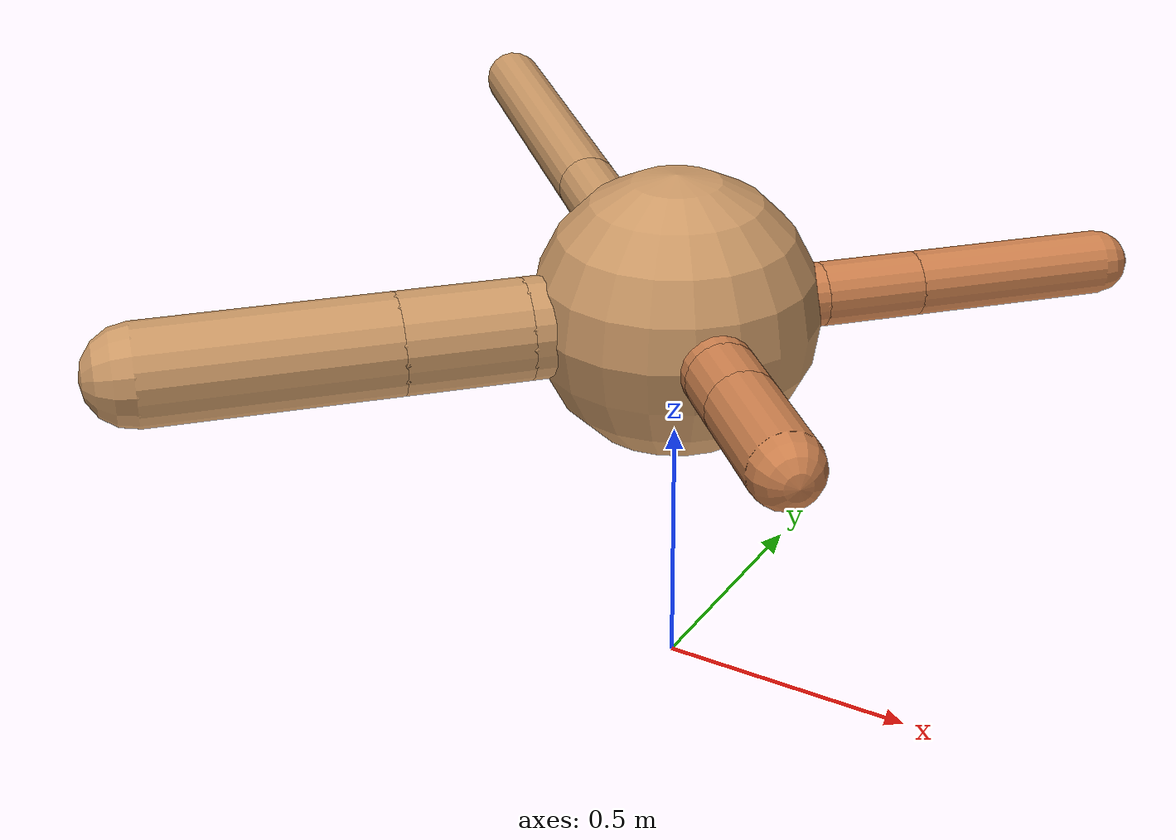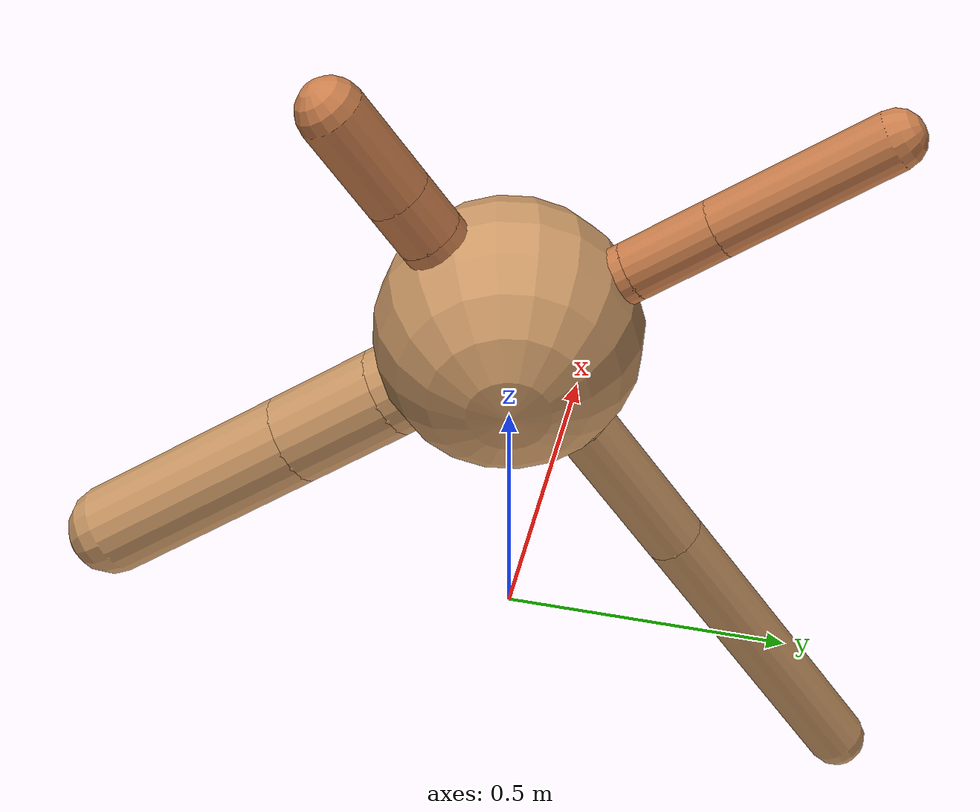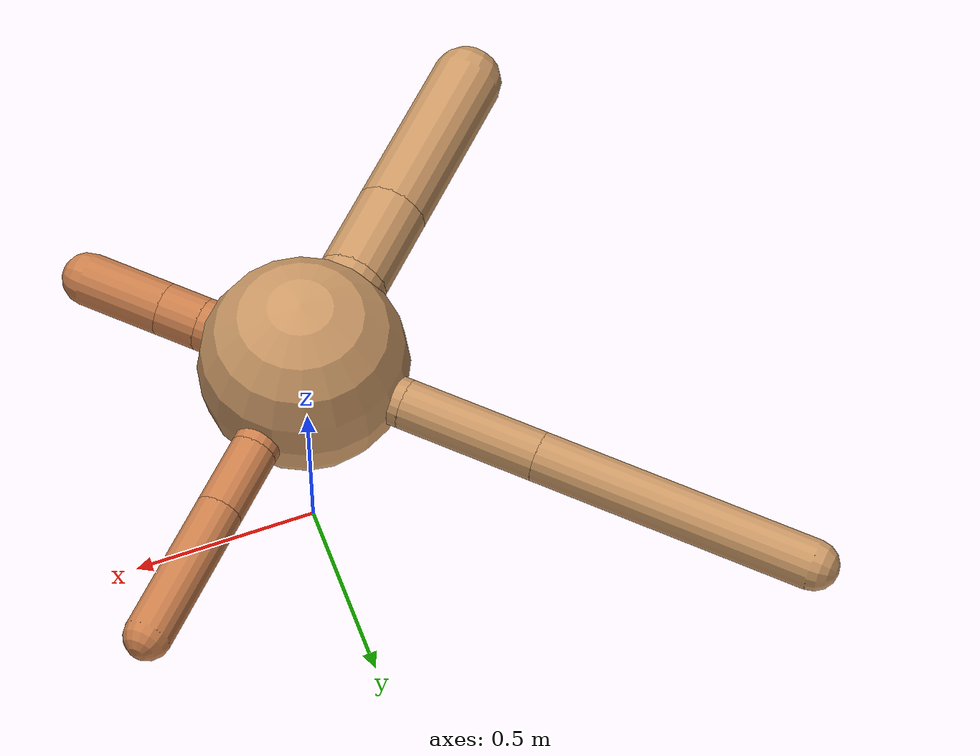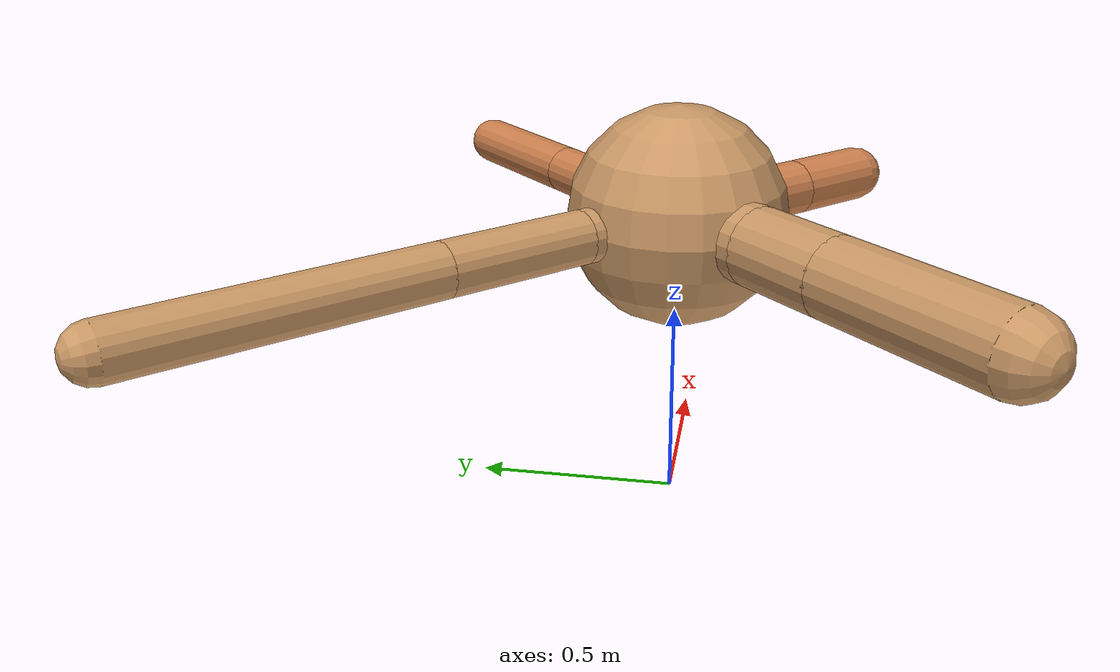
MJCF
<?xml version="1.0" ?>
<mujoco model="ant">

	<compiler angle="degree" coordinate="local" inertiafromgeom="true"/>

	<option integrator="RK4" timestep="0.01"/>

	<custom>

		<numeric data="0.0 0.0 0.55 1.0 0.0 0.0 0.0 0.0 1.0 0.0 -1.0 0.0 -1.0 0.0 1.0" name="init_qpos"/>

	</custom>

	<default>

		<joint armature="1" damping="1" limited="true"/>

		<geom conaffinity="0" condim="3" density="5.0" friction="1.5 0.1 0.1" margin="0.01" rgba="0.8 0.6 0.4 1"/>

	</default>

	<worldbody>

		<body name="torso" pos="0 0 0.75">

			<geom name="torso_geom" pos="0 0 0" size="0.2692243532212668" type="sphere"/>

			<!--joint armature="0" damping="0" limited="false" margin="0.01" name="root" pos="0 0 0" type="free"/-->

			<body name="front_left_leg" pos="0 0 0">

				<geom fromto="0 0 0 0.2 0.2 0" name="aux_1_geom" size="0.06052411054162675" type="capsule" rgba=".8 .5 .3 1"/>

				<body name="aux_1" pos="0.2 0.2 0">

					<joint axis="0 0 1" name="hip_1" pos="0.0 0.0 0.0" range="-40 40" type="hinge"/>

					<geom fromto="0 0 0 0.1332917486111472 0.1332917486111472 0" name="left_leg_geom" size="0.06052411054162675" type="capsule" rgba=".8 .5 .3 1"/>

					<body pos="0.1332917486111472 0.1332917486111472 0" name="front_left_foot">

						<joint axis="-1 1 0" name="ankle_1" pos="0.0 0.0 0.0" range="30 100" type="hinge"/>

						<geom fromto="0 0 0 0.2665834972222944 0.2665834972222944 0" name="left_ankle_geom" size="0.06052411054162675" type="capsule" rgba=".8 .5 .3 1"/>

					</body>

				</body>

			</body>

			<body name="front_right_leg" pos="0 0 0">

				<geom fromto="0 0 0 -0.2 0.2 0" name="aux_2_geom" size="0.06395162854882613" type="capsule"/>

				<body name="aux_2" pos="-0.2 0.2 0">

					<joint axis="0 0 1" name="hip_2" pos="0.0 0.0 0.0" range="-40 40" type="hinge"/>

					<geom fromto="0 0 0 -0.25692919570838396 0.25692919570838396 0" name="right_leg_geom" size="0.06395162854882613" type="capsule"/>

					<body pos="-0.25692919570838396 0.25692919570838396 0" name="front_right_foot">

						<joint axis="1 1 0" name="ankle_2" pos="0.0 0.0 0.0" range="-100 -30" type="hinge"/>

						<geom fromto="0 0 0 -0.5138583914167679 0.5138583914167679 0" name="right_ankle_geom" size="0.06395162854882613" type="capsule"/>

					</body>

				</body>

			</body>

			<body name="left_back_leg" pos="0 0 0">

				<geom fromto="0 0 0 -0.2 -0.2 0" name="aux_3_geom" size="0.0947335822843479" type="capsule"/>

				<body name="aux_3" pos="-0.2 -0.2 0">

					<joint axis="0 0 1" name="hip_3" pos="0.0 0.0 0.0" range="-40 40" type="hinge"/>

					<geom fromto="0 0 0 -0.16383477919824563 -0.16383477919824563 0" name="back_leg_geom" size="0.0947335822843479" type="capsule"/>

					<body pos="-0.16383477919824563 -0.16383477919824563 0" name="left_back_foot">

						<joint axis="-1 1 0" name="ankle_3" pos="0.0 0.0 0.0" range="-100 -30" type="hinge"/>

						<geom fromto="0 0 0 -0.32766955839649126 -0.32766955839649126 0" name="third_ankle_geom" size="0.0947335822843479" type="capsule"/>

					</body>

				</body>

			</body>

			<body name="right_back_leg" pos="0 0 0">

				<geom fromto="0 0 0 0.2 -0.2 0" name="aux_4_geom" size="0.06868169586505753" type="capsule" rgba=".8 .5 .3 1"/>

				<body name="aux_4" pos="0.2 -0.2 0">

					<joint axis="0 0 1" name="hip_4" pos="0.0 0.0 0.0" range="-40 40" type="hinge"/>

					<geom fromto="0 0 0 0.07736789940817393 -0.07736789940817393 0" name="rightback_leg_geom" size="0.06868169586505753" type="capsule" rgba=".8 .5 .3 1"/>

					<body pos="0.07736789940817393 -0.07736789940817393 0" name="right_back_foot">

						<joint axis="1 1 0" name="ankle_4" pos="0.0 0.0 0.0" range="30 100" type="hinge"/>

						<geom fromto="0 0 0 0.15473579881634786 -0.15473579881634786 0" name="fourth_ankle_geom" size="0.06868169586505753" type="capsule" rgba=".8 .5 .3 1"/>

					</body>

				</body>

			</body>

		</body>

	</worldbody>

	<actuator>

		<motor ctrllimited="true" ctrlrange="-1.0 1.0" joint="hip_4" gear="150"/>

		<motor ctrllimited="true" ctrlrange="-1.0 1.0" joint="ankle_4" gear="150"/>

		<motor ctrllimited="true" ctrlrange="-1.0 1.0" joint="hip_1" gear="150"/>

		<motor ctrllimited="true" ctrlrange="-1.0 1.0" joint="ankle_1" gear="150"/>

		<motor ctrllimited="true" ctrlrange="-1.0 1.0" joint="hip_2" gear="150"/>

		<motor ctrllimited="true" ctrlrange="-1.0 1.0" joint="ankle_2" gear="150"/>

		<motor ctrllimited="true" ctrlrange="-1.0 1.0" joint="hip_3" gear="150"/>

		<motor ctrllimited="true" ctrlrange="-1.0 1.0" joint="ankle_3" gear="150"/>

	</actuator>

</mujoco>
